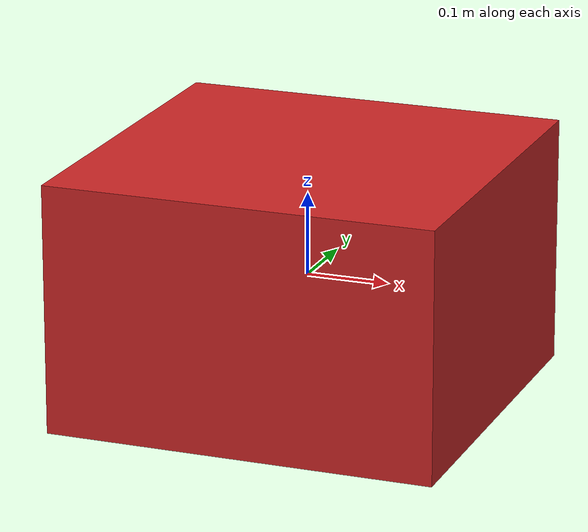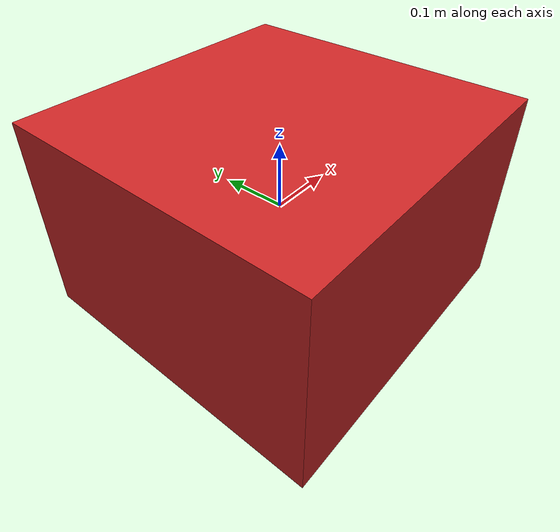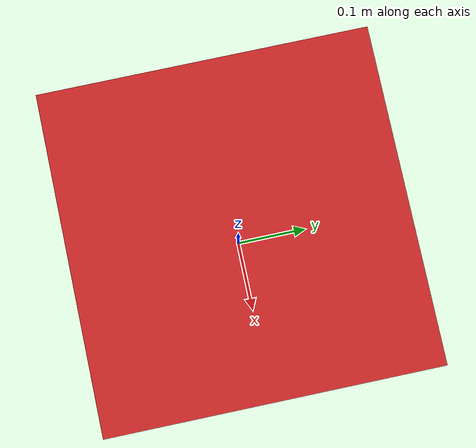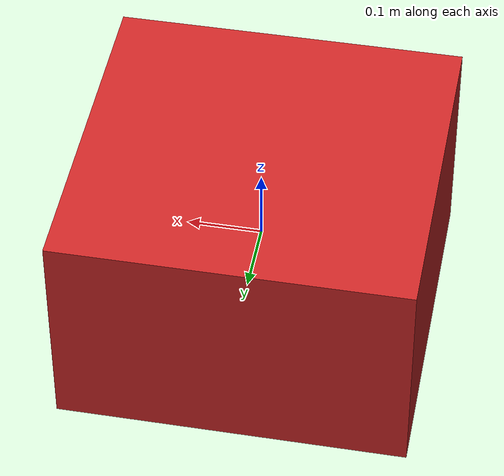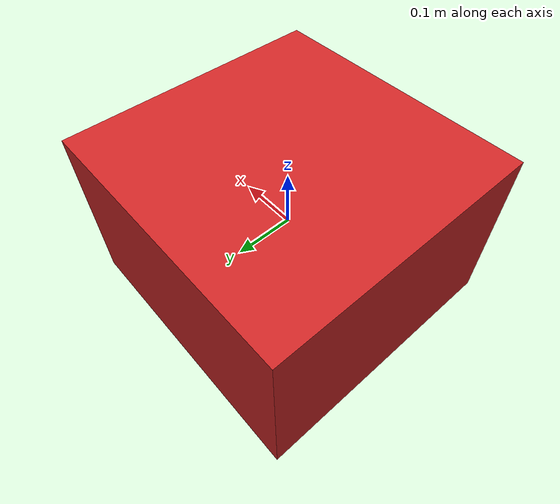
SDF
<?xml version="1.0" ?>
<sdf version='1.4'>
  <model name="demo_table">
      <static>1</static>
      <link name='link_demo_table'>
        <inertial>
          <mass>0.25</mass>
          <inertia>
            <ixx>0.001</ixx>
            <ixy>0.000000</ixy>
            <ixz>0.000000</ixz>
            <iyy>0.001</iyy>
            <iyz>0.000000</iyz>
            <izz>0.001</izz>
          </inertia>
        </inertial>
        <collision name='collision_demo_table'>
          <geometry>
            <box>
              <size>0.47 0.46 0.3</size>
            </box>
          </geometry>
          <surface>
            <friction>
              <ode>
                <mu>30.0</mu>
                <mu2>30.0</mu2>
              </ode>
            </friction>
            <contact>
              <ode>
                <kp>1000000.0</kp>
                <kd>100.0</kd>
                <max_vel>1.0</max_vel>
                <min_depth>0.002</min_depth>
              </ode>
            </contact>
          </surface>
        </collision>
        <visual name='visual_demo_table'>
          <geometry>
            <box>
              <size>0.47 0.46 0.3</size>
            </box>
          </geometry>
          <material>
            <script>
              <uri>file://media/materials/scripts/gazebo.material</uri>
              <name>Gazebo/Red</name>
            </script>
          </material>
        </visual>
        <velocity_decay>
          <linear>0.000000</linear>
          <angular>0.000000</angular>
        </velocity_decay>
        <self_collide>0</self_collide>
        <kinematic>0</kinematic>
        <gravity>1</gravity>
      </link>
  </model>
</sdf>
